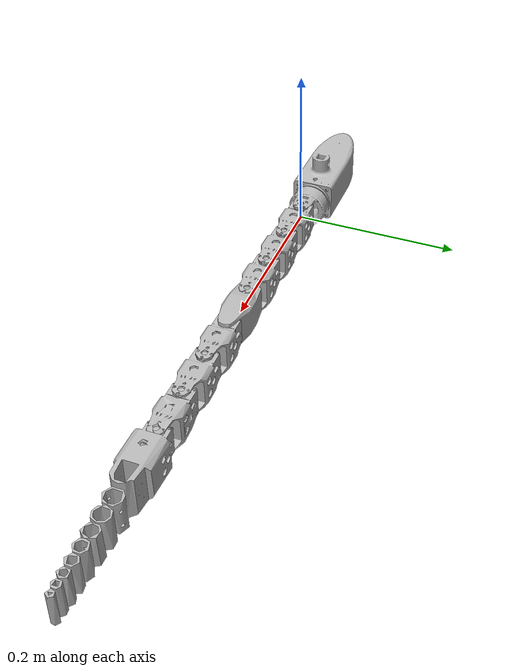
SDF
<?xml version="1.0" ?>
<sdf version="1.6">
    <world name="world">
        <model name="1guilla_watertight">
            <pose>0.0 0.0 0.0 0.0 0.0 0.0</pose>

            <link name="link1">
                <pose>0 0 0 0 0 0</pose>
                <inertial>
                    <pose>0.0141042 0.000282658 -0.000750078 0 0 0</pose>
                    <mass>0.0541502</mass>
                    <density>800.0</density>
                    <inertia>
                        <ixx>1.27893e-05</ixx>
                        <ixy>-4.07424e-09</ixy>
                        <ixz>-1.95497e-07</ixz>
                        <iyy>1.77376e-05</iyy>
                        <iyz>-5.31294e-10</iyz>
                        <izz>1.48736e-05</izz>
                    </inertia>
                </inertial>
                <collision name="link1_collision">
                    <pose>0.0 0.0 0.0 0.0 0.0 0.0</pose>
                    <geometry>
                        <mesh>
                            <uri>meshes/link1_collision.stl</uri>
                            <scale>1.0 1.0 1.0</scale>
                        </mesh>
                    </geometry>
                </collision>
                <visual name="link1_visual">
                    <pose>0.0 0.0 0.0 0.0 0.0 0.0</pose>
                    <geometry>
                        <mesh>
                            <uri>meshes/link1.obj</uri>
                            <scale>1.0 1.0 1.0</scale>
                        </mesh>
                    </geometry>
                </visual>
            </link>

            <link name="link0">
                <pose>-0.17701 0 0 0 0 0</pose>
                <inertial>
                    <pose>0.0768153 0.000232446 0.00434513 0 0 0</pose>
                    <mass>0.30562</mass>
                    <density>800.0</density>
                    <inertia>
                        <ixx>0.000166587</ixx>
                        <ixy>-5.95109e-06</ixy>
                        <ixz>-1.14901e-05</ixz>
                        <iyy>0.000481477</iyy>
                        <iyz>2.70907e-08</iyz>
                        <izz>0.000439834</izz>
                    </inertia>
                </inertial>
                <collision name="link0_collision">
                    <pose>0.0 0.0 0.0 0.0 0.0 0.0</pose>
                    <geometry>
                        <mesh>
                            <uri>meshes/link0_collision.stl</uri>
                            <scale>1.0 1.0 1.0</scale>
                        </mesh>
                    </geometry>
                </collision>
                <visual name="link0_visual">
                    <pose>0.0 0.0 0.0 0.0 0.0 0.0</pose>
                    <geometry>
                        <mesh>
                            <uri>meshes/link0.obj</uri>
                            <scale>1.0 1.0 1.0</scale>
                        </mesh>
                    </geometry>
                </visual>
            </link>

            <link name="link2">
                <pose>0.0601 0 0 0 0 0</pose>
                <inertial>
                    <pose>0.0133616 0.000257007 -0.000825791 0 0 0</pose>
                    <mass>0.0521243</mass>
                    <density>800.0</density>
                    <inertia>
                        <ixx>1.22237e-05</ixx>
                        <ixy>-1.80699e-08</ixy>
                        <ixz>-2.28957e-07</ixz>
                        <iyy>1.63689e-05</iyy>
                        <iyz>8.53212e-10</iyz>
                        <izz>1.37153e-05</izz>
                    </inertia>
                </inertial>
                <collision name="link2_collision">
                    <pose>0.0 0.0 0.0 0.0 0.0 0.0</pose>
                    <geometry>
                        <mesh>
                            <uri>meshes/link2_collision.stl</uri>
                            <scale>1.0 1.0 1.0</scale>
                        </mesh>
                    </geometry>
                </collision>
                <visual name="link2_visual">
                    <pose>0.0 0.0 0.0 0.0 0.0 0.0</pose>
                    <geometry>
                        <mesh>
                            <uri>meshes/link2.obj</uri>
                            <scale>1.0 1.0 1.0</scale>
                        </mesh>
                    </geometry>
                </visual>
            </link>

            <link name="link3">
                <pose>0.1201 0 0 0 0 0</pose>
                <inertial>
                    <pose>0.0134025 0.000334231 -0.000481302 0 0 0</pose>
                    <mass>0.0521687</mass>
                    <density>800.0</density>
                    <inertia>
                        <ixx>1.22334e-05</ixx>
                        <ixy>-2.10544e-08</ixy>
                        <ixz>-2.36288e-07</ixz>
                        <iyy>1.63981e-05</iyy>
                        <iyz>6.68382e-10</iyz>
                        <izz>1.37408e-05</izz>
                    </inertia>
                </inertial>
                <collision name="link3_collision">
                    <pose>0.0 0.0 0.0 0.0 0.0 0.0</pose>
                    <geometry>
                        <mesh>
                            <uri>meshes/link3_collision.stl</uri>
                            <scale>1.0 1.0 1.0</scale>
                        </mesh>
                    </geometry>
                </collision>
                <visual name="link3_visual">
                    <pose>0.0 0.0 0.0 0.0 0.0 0.0</pose>
                    <geometry>
                        <mesh>
                            <uri>meshes/link3.obj</uri>
                            <scale>1.0 1.0 1.0</scale>
                        </mesh>
                    </geometry>
                </visual>
            </link>

            <link name="link4">
                <pose>0.18 0 0 0 0 0</pose>
                <inertial>
                    <pose>0.013567 0.000269682 -0.000122739 0 0 0</pose>
                    <mass>0.0525867</mass>
                    <density>800.0</density>
                    <inertia>
                        <ixx>1.23437e-05</ixx>
                        <ixy>4.50397e-08</ixy>
                        <ixz>-2.25611e-07</ixz>
                        <iyy>1.66667e-05</iyy>
                        <iyz>-4.34874e-09</iyz>
                        <izz>1.398e-05</izz>
                    </inertia>
                </inertial>
                <collision name="link4_collision">
                    <pose>0.0 0.0 0.0 0.0 0.0 0.0</pose>
                    <geometry>
                        <mesh>
                            <uri>meshes/link4_collision.stl</uri>
                            <scale>1.0 1.0 1.0</scale>
                        </mesh>
                    </geometry>
                </collision>
                <visual name="link4_visual">
                    <pose>0.0 0.0 0.0 0.0 0.0 0.0</pose>
                    <geometry>
                        <mesh>
                            <uri>meshes/link4.obj</uri>
                            <scale>1.0 1.0 1.0</scale>
                        </mesh>
                    </geometry>
                </visual>
            </link>

            <link name="link5">
                <pose>0.239901 0 0 0 0 0</pose>
                <inertial>
                    <pose>0.0126229 0.000165568 0.000269341 0 0 0</pose>
                    <mass>0.050202</mass>
                    <density>800.0</density>
                    <inertia>
                        <ixx>1.16933e-05</ixx>
                        <ixy>-1.04686e-08</ixy>
                        <ixz>-2.23156e-07</ixz>
                        <iyy>1.51568e-05</iyy>
                        <iyz>2.32883e-10</iyz>
                        <izz>1.2624e-05</izz>
                    </inertia>
                </inertial>
                <collision name="link5_collision">
                    <pose>0.0 0.0 0.0 0.0 0.0 0.0</pose>
                    <geometry>
                        <mesh>
                            <uri>meshes/link5_collision.stl</uri>
                            <scale>1.0 1.0 1.0</scale>
                        </mesh>
                    </geometry>
                </collision>
                <visual name="link5_visual">
                    <pose>0.0 0.0 0.0 0.0 0.0 0.0</pose>
                    <geometry>
                        <mesh>
                            <uri>meshes/link5.obj</uri>
                            <scale>1.0 1.0 1.0</scale>
                        </mesh>
                    </geometry>
                </visual>
            </link>

            <link name="link6">
                <pose>0.3001 0 0 0 0 0</pose>
                <inertial>
                    <pose>0.0126881 0.000107733 0.000593081 0 0 0</pose>
                    <mass>0.0509383</mass>
                    <density>800.0</density>
                    <inertia>
                        <ixx>1.19153e-05</ixx>
                        <ixy>-2.43759e-08</ixy>
                        <ixz>-2.14587e-07</ixz>
                        <iyy>1.56123e-05</iyy>
                        <iyz>-3.13669e-10</iyz>
                        <izz>1.30377e-05</izz>
                    </inertia>
                </inertial>
                <collision name="link6_collision">
                    <pose>0.0 0.0 0.0 0.0 0.0 0.0</pose>
                    <geometry>
                        <mesh>
                            <uri>meshes/link6_collision.stl</uri>
                            <scale>1.0 1.0 1.0</scale>
                        </mesh>
                    </geometry>
                </collision>
                <visual name="link6_visual">
                    <pose>0.0 0.0 0.0 0.0 0.0 0.0</pose>
                    <geometry>
                        <mesh>
                            <uri>meshes/link6.obj</uri>
                            <scale>1.0 1.0 1.0</scale>
                        </mesh>
                    </geometry>
                </visual>
            </link>

            <link name="link7">
                <pose>0.3601 0 0 0 0 0</pose>
                <inertial>
                    <pose>0.0126461 0.000197941 0.00104009 0 0 0</pose>
                    <mass>0.0508261</mass>
                    <density>800.0</density>
                    <inertia>
                        <ixx>1.18814e-05</ixx>
                        <ixy>1.38153e-08</ixy>
                        <ixz>-2.13313e-07</ixz>
                        <iyy>1.55404e-05</iyy>
                        <iyz>1.51218e-09</iyz>
                        <izz>1.29745e-05</izz>
                    </inertia>
                </inertial>
                <collision name="link7_collision">
                    <pose>0.0 0.0 0.0 0.0 0.0 0.0</pose>
                    <geometry>
                        <mesh>
                            <uri>meshes/link7_collision.stl</uri>
                            <scale>1.0 1.0 1.0</scale>
                        </mesh>
                    </geometry>
                </collision>
                <visual name="link7_visual">
                    <pose>0.0 0.0 0.0 0.0 0.0 0.0</pose>
                    <geometry>
                        <mesh>
                            <uri>meshes/link7.obj</uri>
                            <scale>1.0 1.0 1.0</scale>
                        </mesh>
                    </geometry>
                </visual>
            </link>

            <link name="link8">
                <pose>0.4199 0 0 0 0 0</pose>
                <inertial>
                    <pose>0.0800787 -3.72058e-05 0.00274021 0 0 0</pose>
                    <mass>0.250019</mass>
                    <density>800.0</density>
                    <inertia>
                        <ixx>7.07356e-05</ixx>
                        <ixy>-1.31389e-06</ixy>
                        <ixz>-3.76232e-07</ixz>
                        <iyy>0.000855574</iyy>
                        <iyz>1.41718e-08</iyz>
                        <izz>0.000831848</izz>
                    </inertia>
                </inertial>
                <collision name="link8_collision">
                    <pose>0.0 0.0 0.0 0.0 0.0 0.0</pose>
                    <geometry>
                        <mesh>
                            <uri>meshes/link8_collision.stl</uri>
                            <scale>1.0 1.0 1.0</scale>
                        </mesh>
                    </geometry>
                </collision>
                <visual name="link8_visual">
                    <pose>0.0 0.0 0.0 0.0 0.0 0.0</pose>
                    <geometry>
                        <mesh>
                            <uri>meshes/link8.obj</uri>
                            <scale>1.0 1.0 1.0</scale>
                        </mesh>
                    </geometry>
                </visual>
            </link>

            <joint name="joint_body_00" type="fixed">
                <parent>link1</parent>
                <child>link0</child>
                <pose>0 0 0 0 0 0</pose>
            </joint>

            <joint name="joint_body_01" type="revolute">
                <parent>link1</parent>
                <child>link2</child>
                <pose>0 0 0 0 0 0</pose>
                <axis>
                    <xyz>0.0 0.0 -1.0</xyz>
                    <limit>
                        <lower>-1.5708</lower>
                        <upper>1.5708</upper>
                    </limit>
                </axis>
            </joint>

            <joint name="joint_body_02" type="revolute">
                <parent>link2</parent>
                <child>link3</child>
                <pose>0 0 0 0 0 0</pose>
                <axis>
                    <xyz>0.0 0.0 -1.0</xyz>
                    <limit>
                        <lower>-1.5708</lower>
                        <upper>1.5708</upper>
                    </limit>
                </axis>
            </joint>

            <joint name="joint_body_03" type="revolute">
                <parent>link3</parent>
                <child>link4</child>
                <pose>0 0 0 0 0 0</pose>
                <axis>
                    <xyz>0.0 0.0 -1.0</xyz>
                    <limit>
                        <lower>-1.5708</lower>
                        <upper>1.5708</upper>
                    </limit>
                </axis>
            </joint>

            <joint name="joint_body_04" type="revolute">
                <parent>link4</parent>
                <child>link5</child>
                <pose>0 0 0 0 0 0</pose>
                <axis>
                    <xyz>0.0 0.0 -1.0</xyz>
                    <limit>
                        <lower>-1.5708</lower>
                        <upper>1.5708</upper>
                    </limit>
                </axis>
            </joint>

            <joint name="joint_body_05" type="revolute">
                <parent>link5</parent>
                <child>link6</child>
                <pose>0 0 0 0 0 0</pose>
                <axis>
                    <xyz>0.0 0.0 -1.0</xyz>
                    <limit>
                        <lower>-1.5708</lower>
                        <upper>1.5708</upper>
                    </limit>
                </axis>
            </joint>

            <joint name="joint_body_06" type="revolute">
                <parent>link6</parent>
                <child>link7</child>
                <pose>0 0 0 0 0 0</pose>
                <axis>
                    <xyz>0.0 0.0 -1.0</xyz>
                    <limit>
                        <lower>-1.5708</lower>
                        <upper>1.5708</upper>
                    </limit>
                </axis>
            </joint>

            <joint name="joint_body_07" type="revolute">
                <parent>link7</parent>
                <child>link8</child>
                <pose>0 0 0 0 0 0</pose>
                <axis>
                    <xyz>0.0 0.0 -1.0</xyz>
                    <limit>
                        <lower>-1.5708</lower>
                        <upper>1.5708</upper>
                    </limit>
                </axis>
            </joint>

            <linkend name="link8">
                <pose>0.438767 0 0</pose>
            </linkend>
        </model>
    </world>
</sdf>
